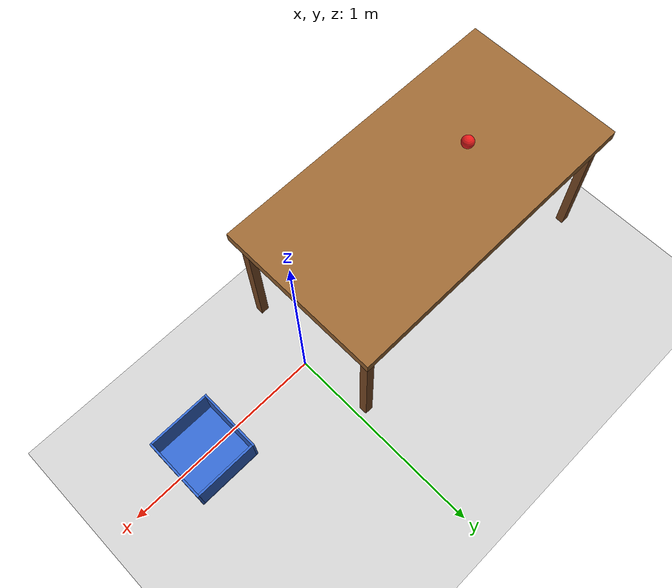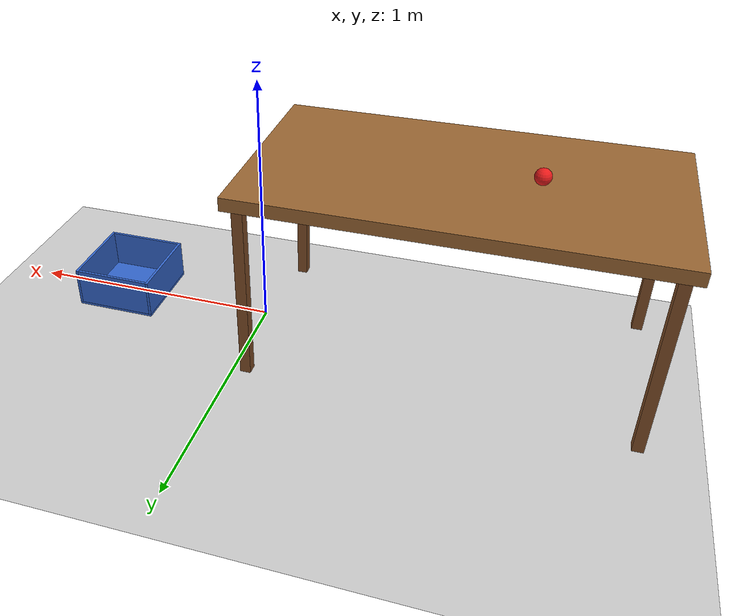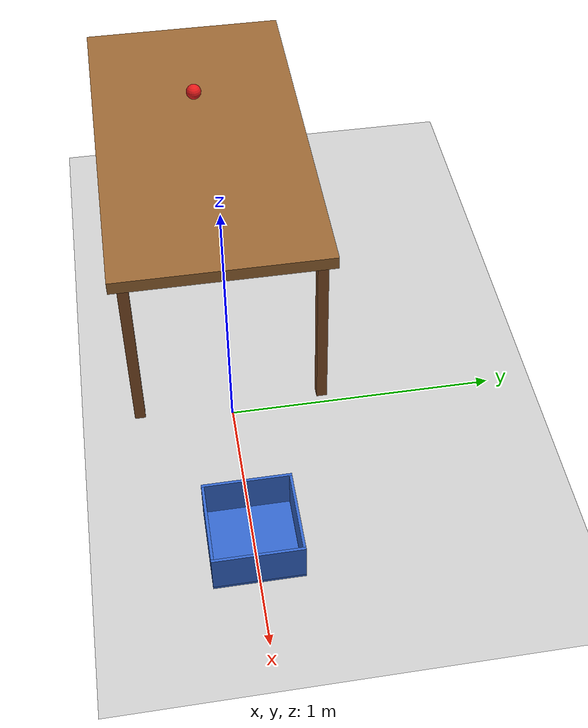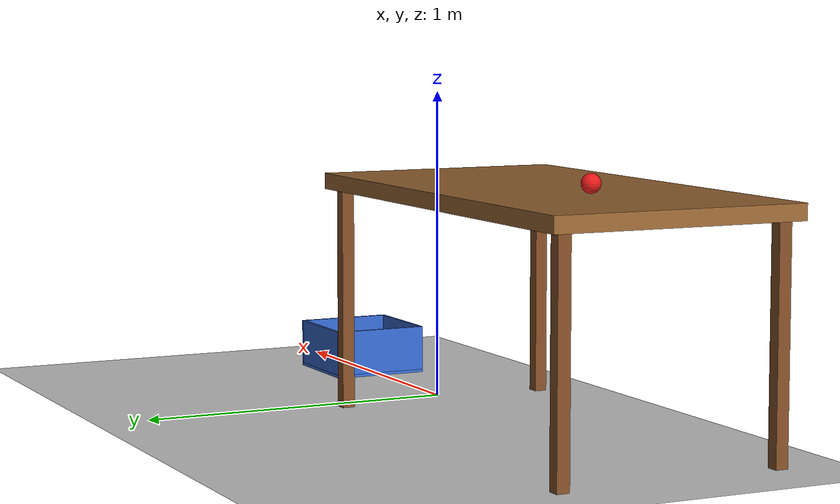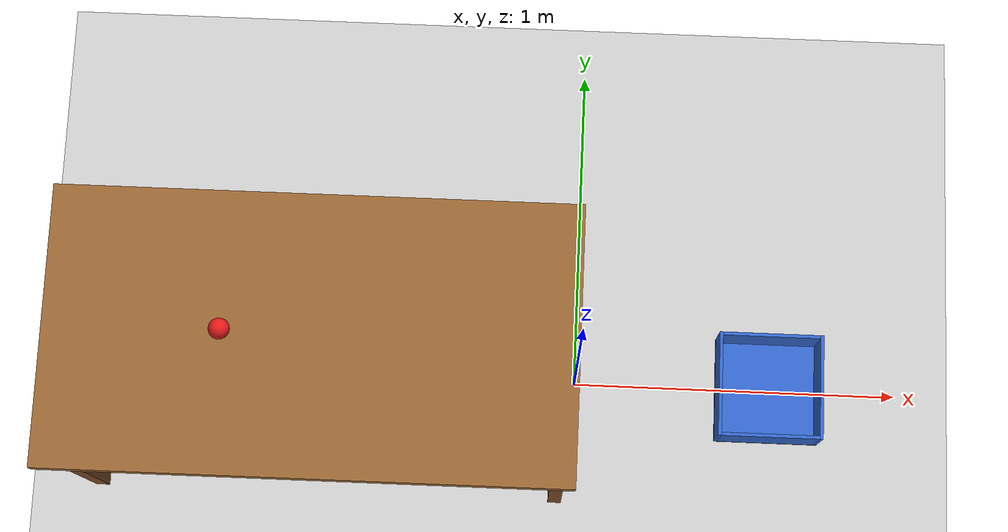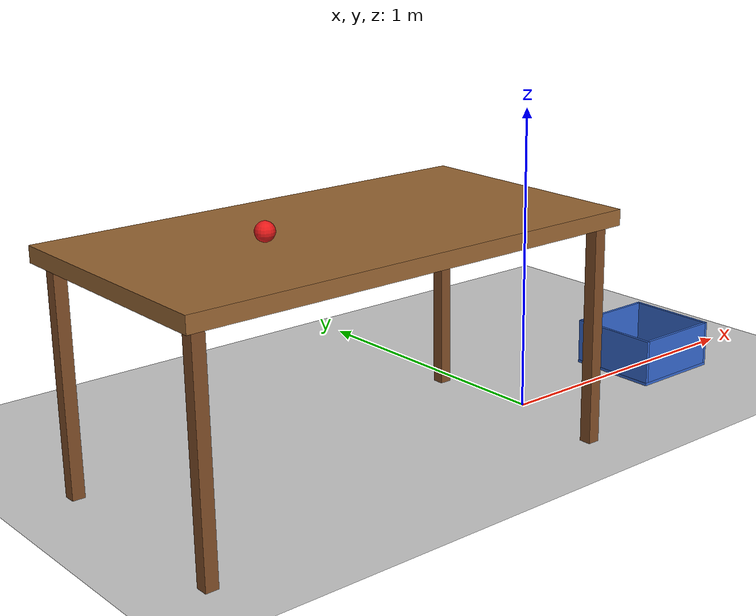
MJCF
<mujoco model="ball_off_table_into_bucket">
  <option timestep="0.002" gravity="0 0 -9.81"/>

  <worldbody>
    <light name="sun" pos="0 0 3" dir="0 0 -1"/>
    <geom name="floor" type="plane" size="3 3 0.1" rgba="0.8 0.8 0.8 1"/>

    <body name="table" pos="0 0 0">
      <geom name="table_top" type="box" pos="-0.75 0 0.725" size="0.75 0.4 0.025" rgba="0.6 0.4 0.2 1"/>
      <geom name="table_leg1" type="box" pos="-0.05 0.35 0.35" size="0.02 0.02 0.35" rgba="0.5 0.3 0.15 1"/>
      <geom name="table_leg2" type="box" pos="-0.05 -0.35 0.35" size="0.02 0.02 0.35" rgba="0.5 0.3 0.15 1"/>
      <geom name="table_leg3" type="box" pos="-1.45 0.35 0.35" size="0.02 0.02 0.35" rgba="0.5 0.3 0.15 1"/>
      <geom name="table_leg4" type="box" pos="-1.45 -0.35 0.35" size="0.02 0.02 0.35" rgba="0.5 0.3 0.15 1"/>
    </body>

    <body name="bucket" pos="0.6 0 0">
      <geom name="bucket_bottom" type="box" pos="0 0 0.005" size="0.16 0.16 0.005" rgba="0.2 0.4 0.8 1"/>
      <geom name="bucket_wall_px" type="box" pos="0.155 0 0.085" size="0.005 0.16 0.075" rgba="0.2 0.4 0.8 1"/>
      <geom name="bucket_wall_nx" type="box" pos="-0.155 0 0.085" size="0.005 0.16 0.075" rgba="0.2 0.4 0.8 1"/>
      <geom name="bucket_wall_py" type="box" pos="0 0.155 0.085" size="0.15 0.005 0.075" rgba="0.2 0.4 0.8 1"/>
      <geom name="bucket_wall_ny" type="box" pos="0 -0.155 0.085" size="0.15 0.005 0.075" rgba="0.2 0.4 0.8 1"/>
    </body>

    <body name="ball" pos="-1.0 0 0.78">
      <freejoint name="ball_free"/>
      <geom name="ball" type="sphere" size="0.03" density="1000" friction="1 0.005 0.0001" rgba="0.9 0.1 0.1 1"/>
    </body>
  </worldbody>

  <keyframe>
    <key name="start" qpos="-1.0 0 0.78 1 0 0 0" qvel="1.555 0 0 0 51.833 0"/>
  </keyframe>
</mujoco>
